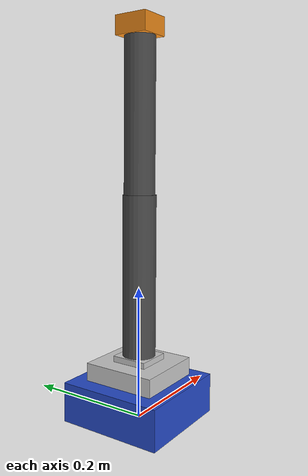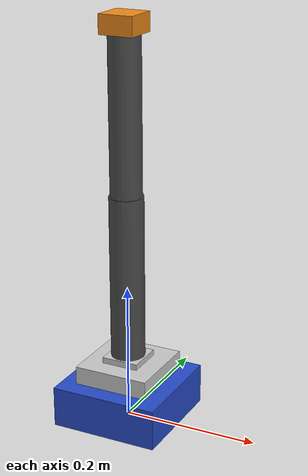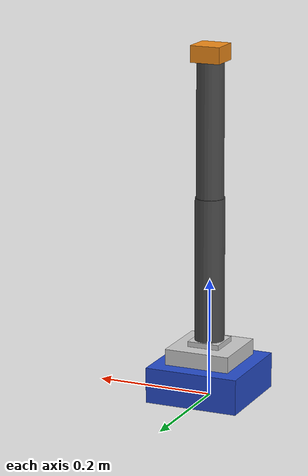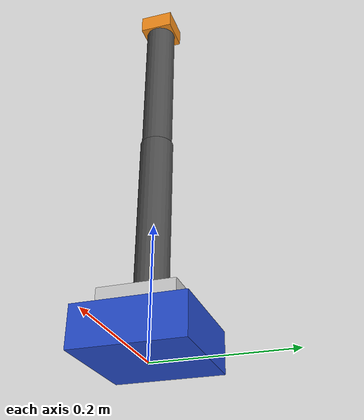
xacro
<?xml version="1.0"?>
<robot xmlns:xacro="http://www.ros.org/wiki/xacro" >

    <xacro:property name="arm_base_length" value="0.16" />
    <xacro:property name="arm_base_width" value="0.16" />
    <xacro:property name="arm_base_height" value="0.06" />
    <xacro:property name="forearm_radius" value="0.025" />
    <xacro:property name="forearm_length" value="0.28" />
    <xacro:property name="hand_radius" value="0.023" />
    <xacro:property name="hand_length" value="0.24" />

    <link name="arm_base_link">
        <visual>
            <geometry>
                <box size="${arm_base_length} ${arm_base_width} ${arm_base_height}"/>
            </geometry>
            <origin xyz="0 0 ${arm_base_height/2}" rpy="0 0 0" />
            <material name="dark_blue" />
        </visual>

        <visual>
            <geometry>
                <box size="${arm_base_length * 0.70} ${arm_base_width * 0.70} ${arm_base_height * 0.45}"/>
            </geometry>
            <origin xyz="0 0 ${arm_base_height + arm_base_height * 0.25}" rpy="0 0 0" />
            <material name="light_grey" />
        </visual>

        <collision>
            <geometry>
                <box size="${arm_base_length} ${arm_base_width} ${arm_base_height}"/>
            </geometry>
            <origin xyz="0 0 ${arm_base_height/2}" rpy="0 0 0" />
        </collision>

        <xacro:box_inertia m="5.0" x="${arm_base_length}" y="${arm_base_width}" z="${arm_base_height}"
                           o_xyz="0 0 ${arm_base_height/2}" o_rpy="0 0 0" />
    </link>

    <link name="forearm_link">
        <visual>
            <geometry>
                <cylinder radius="${forearm_radius}" length="${forearm_length}"/>
            </geometry>
            <origin xyz="0 0 ${forearm_length/2}" rpy="0 0 0" />
            <material name="dark_grey" />
        </visual>

        <visual>
            <geometry>
                <box size="${forearm_radius * 2.2} ${forearm_radius * 2.2} ${forearm_radius * 1.2}"/>
            </geometry>
            <origin xyz="0 0 ${forearm_length * 0.08}" rpy="0 0 0" />
            <material name="light_grey" />
        </visual>

        <collision>
            <geometry>
                <cylinder radius="${forearm_radius}" length="${forearm_length}"/>
            </geometry>
            <origin xyz="0 0 ${forearm_length/2}" rpy="0 0 0" />
        </collision>

        <xacro:cylinder_inertia m="0.3" r="${forearm_radius}" h="${forearm_length}"
                                o_xyz="0 0 ${forearm_length/2}" o_rpy="0 0 0" />
    </link>

    <link name="hand_link">
        <visual>
            <geometry>
                <cylinder radius="${hand_radius}" length="${hand_length}"/>
            </geometry>
            <origin xyz="0 0 ${hand_length/2}" rpy="0 0 0" />
            <material name="dark_grey" />
        </visual>

        <visual>
            <geometry>
                <box size="${hand_radius * 2.2} ${hand_radius * 2.2} ${hand_radius * 1.2}"/>
            </geometry>
            <origin xyz="0 0 ${hand_length}" rpy="0 0 0" />
            <material name="orange" />
        </visual>

        <collision>
            <geometry>
                <cylinder radius="${hand_radius}" length="${hand_length}"/>
            </geometry>
            <origin xyz="0 0 ${hand_length/2}" rpy="0 0 0" />
            <material name="orange" />
        </collision>

        <xacro:cylinder_inertia m="0.3" r="${hand_radius}" h="${hand_length}"
                                o_xyz="0 0 ${hand_length/2}" o_rpy="0 0 0" />
    </link>

    <joint name="arm_base_forearm_joint" type="revolute">
        <parent link="arm_base_link" />
        <child link="forearm_link" />
        <origin xyz="0 0 ${arm_base_height}" rpy="0 0 0" />
        <axis xyz="0 1 0" />
        <limit lower="0" upper="1.57" effort="100" velocity="100"/>
        <dynamics damping="0.3" friction="0.3"/>
    </joint>

    <joint name="forearm_hand_joint" type="revolute">
        <parent link="forearm_link" />
        <child link="hand_link" />
        <origin xyz="0 0 ${forearm_length}" rpy="0 0 0" />
        <axis xyz="0 1 0" />
        <limit lower="0" upper="1.57" effort="100" velocity="100"/>
        <dynamics damping="0.3" friction="0.3"/>
    </joint>

</robot>
